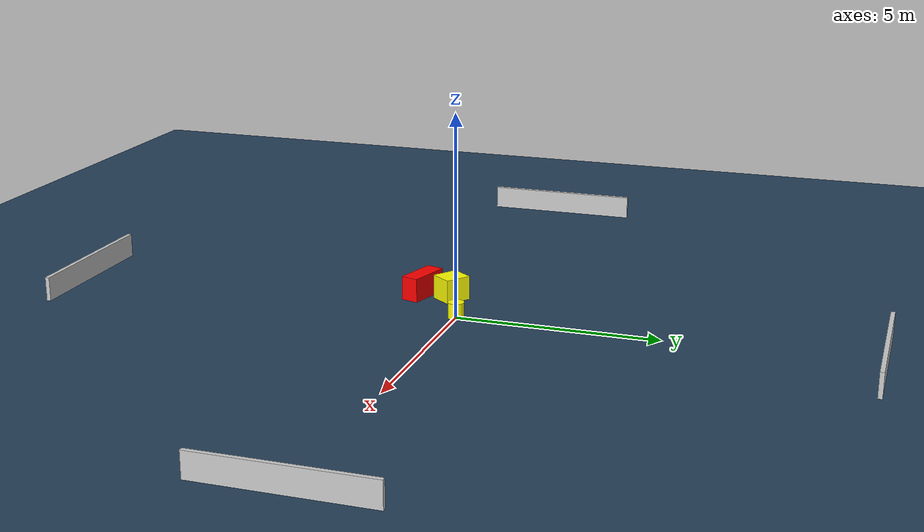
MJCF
<?xml version="1.0" ?>
<mujoco model="generated_environment">
  <option timestep="0.01" integrator="RK4" cone="elliptic"/>
  <default>
    <geom density="1"/>
  </default>
  <asset>
    <texture builtin="gradient" height="3072" name="skybox" rgb1="0.3 0.5 0.7" rgb2="0 0 0" type="skybox" width="512"/>
    <texture builtin="checker" height="300" name="groundplane" rgb1="0.2 0.3 0.4" rgb2="0.1 0.2 0.3" type="2d" width="300"/>
    <material name="groundplane" reflectance="0.2" texrepeat="5 5" texture="groundplane"/>
  </asset>
  <worldbody>
    <light dir="0 0 -1" directional="true" pos="0 0 1.5"/>
    <geom condim="3" friction="0.5 0.005 0.001" material="groundplane" name="floor" pos="0 0 0" size="0 0 0.05" type="plane"/>
    <body name="walls">
      <geom name="wall_1" condim="4" pos="-10.0 0.0 0.3" rgba="0.800000011920929 0.800000011920929 0.800000011920929 1.0" size="0.05 2.0 0.3" type="box"/>
      <geom name="wall_2" condim="4" pos="10.0 0.0 0.3" rgba="0.800000011920929 0.800000011920929 0.800000011920929 1.0" size="0.05 2.0 0.3" type="box"/>
      <geom name="wall_3" condim="4" pos="0.0 -10.0 0.3" rgba="0.800000011920929 0.800000011920929 0.800000011920929 1.0" size="2.0 0.05 0.3" type="box"/>
      <geom name="wall_4" condim="4" pos="0.0 10.0 0.3" rgba="0.800000011920929 0.800000011920929 0.800000011920929 1.0" size="2.0 0.05 0.3" type="box"/>
    </body>
    <body name="robot">
      <joint name="joint_x" type="slide" pos="0 0 0" axis="1 0 0"/>
      <joint name="joint_y" type="slide" pos="0 0 0" axis="0 1 0"/>
      <geom name="robot" type="cylinder" pos="0.0 0.0 0.2" size="0.2 0.2 0.0" mass="5.0" friction="1.0 0.005 0.0001" condim="4" rgba="1.0 1.0 0.0 1.0"/>
    </body>
    <body name="obstacle_1_movable">
      <geom name="obstacle_1_movable" condim="4" pos="-1.3244278593602192 -0.5579890376407439 0.3" euler="0 0 53.65389386409963" friction="0.0 0.005 0.001" rgba="1.0 1.0 0.0 1.0" size="0.30212815428934864 0.33587177551541103 0.3" type="box" mass="0.1"/>
      <joint type="free"/>
    </body>
    <body name="obstacle_2_static">
      <geom name="obstacle_2_static" condim="4" pos="-1.3412688572458122 -1.3308663947944668 0.3" euler="0 0 343.4798150329473" friction="0.0 0.005 0.001" rgba="1.0 0.0 0.0 1.0" size="0.5551972191334671 0.22150596096727904 0.3" type="box"/>
    </body>
  </worldbody>
  <actuator>
    <motor name="actuator_x" joint="joint_x" gear="1" ctrlrange="-1 1"/>
    <motor name="actuator_y" joint="joint_y" gear="1" ctrlrange="-1 1"/>
  </actuator>
</mujoco>
